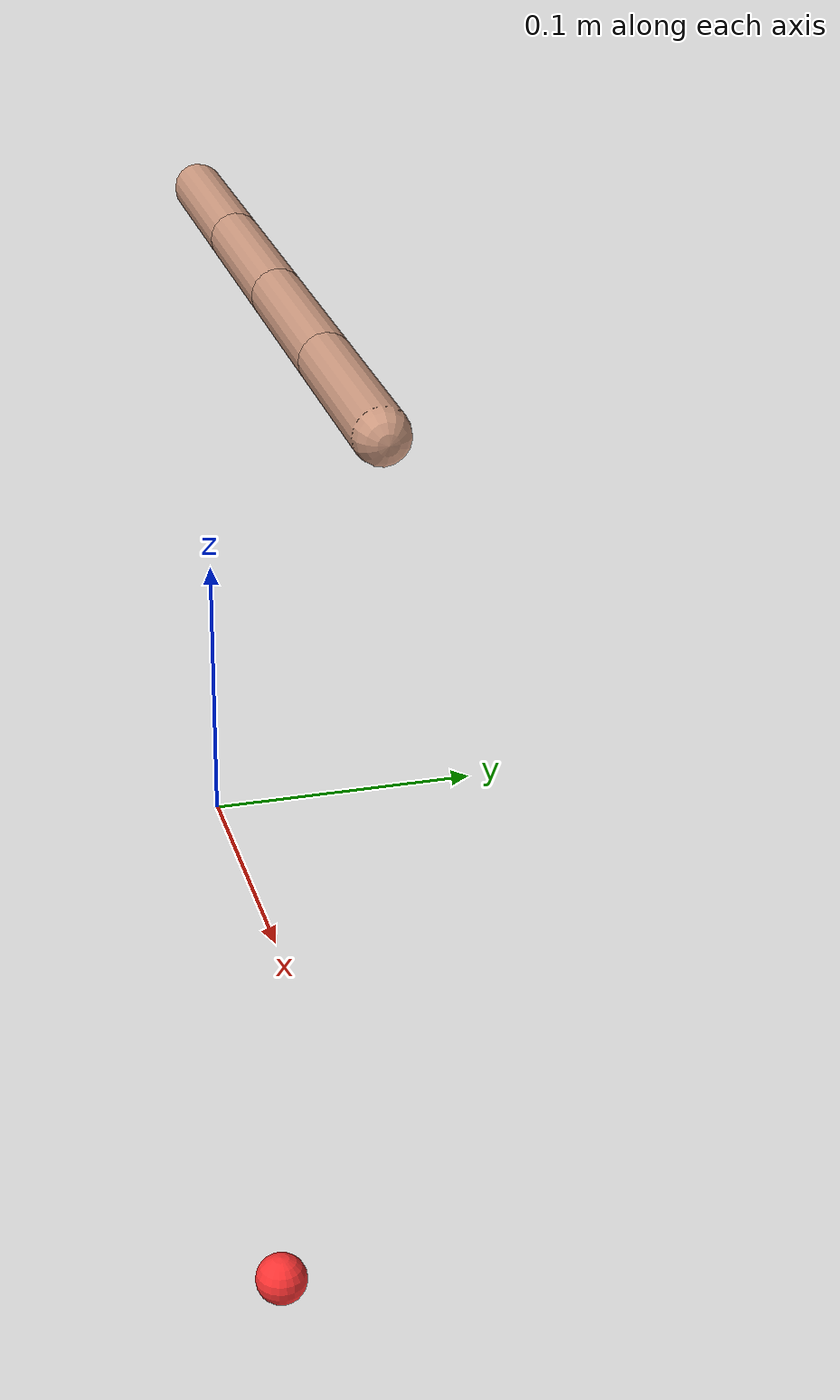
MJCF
<mujoco model="4link_tendon_planar">
    <compiler angle="radian"/>
    <option gravity="0 0 -9.81" integrator="implicitfast" timestep="0.005"/>

    <default>
        <joint type="hinge" axis="0 1 0" limited="true" range="-1.57 1.57" damping="0.01"/>
        <geom type="capsule" size="0.005 0.03" rgba="1 1 1 1" mass="0.01"/>

    </default>

        <!-- ================= BACKGROUND ================= -->
    <asset>
        <!-- solid dark background -->
        <texture type="skybox"
                builtin="gradient"
                rgb1="0 0 0"
                rgb2="0 0 0"
                width="512"
                height="512"/>

        <!-- subtle dark grid floor -->
        <texture type="2d" name="groundplane"
                 builtin="checker"
                 rgb1="0.08 0.08 0.09"
                 rgb2="0.04 0.04 0.045"
                 width="300" height="300"/>

        <material name="groundplane"
                  texture="groundplane"
                  texuniform="true"
                  texrepeat="6 6"
                  reflectance="0"/>
    </asset>

    <worldbody>
        <camera name="ortho_side"
            mode="fixed"
            orthographic="true"
            pos="0.05 -1 0.15"
            xyaxes="1 0 0  0 0 1"
            fovy="0.33"/>
        <body name="link1" pos="0 0 0.24">
            <joint name="joint1" />
            <geom fromto="0 0 0 0.06 0 0" size="0.008" rgba="0.8 0.6 0.5 1"/>
            <body name="link2" pos="0.06 0 0">
                <joint name="joint2"/>
                <geom fromto="0 0 0 0.06 0 0" size="0.008" rgba="0.8 0.6 0.5 1"/>
                <body name="link3" pos="0.06 0 0">
                    <joint name="joint3"/>
                    <geom fromto="0 0 0 0.06 0 0" size="0.008" rgba="0.8 0.6 0.5 1"/>
                    <body name="link4" pos="0.06 0 0">
                        <joint name="joint4"/>
                        <geom fromto="0 0 0 0.06 0 0" size="0.008" rgba="0.8 0.6 0.5 1"/>
                        <body name="attachment" pos="0.06 0.0 0.0">
                              <site name="ee" rgba="1 0 0 1" size="0.001" group="1"/>
                        </body>
                    </body>
                </body>
            </body>
        </body>
    </worldbody>

    <worldbody>
        <body name="target" pos="0.1 0.0 -0.15" quat="0 1 0 0" mocap="true">
        <site type="sphere" size="0.01" rgba="1 0.2 0.2 0.9" group="2"/>
        </body>
    </worldbody>

        <visual>

        <!-- remove haze completely -->
        <rgba haze="0 0 0 0"/>

        <!-- softer light on dark bg -->
        <headlight diffuse="0.9 0.9 0.9"
                ambient="0.15 0.15 0.15"
                specular="0 0 0"/>

        <global azimuth="140"
                elevation="-20"
                offwidth="3840"
                offheight="2160"/>

    </visual>

    <!-- Tendon-based antagonistic actuation -->
    <tendon>
        <!-- Tendon pair A -->
        <fixed name="tendon_a_flex">
            <joint joint="joint1" coef="1"/>
            <joint joint="joint2" coef="1"/>
        </fixed>
        <fixed name="tendon_a_ext">
            <joint joint="joint1" coef="-1"/>
            <joint joint="joint2" coef="-1"/>
        </fixed>

        <!-- Tendon pair B -->
        <fixed name="tendon_b_flex">
            <joint joint="joint3" coef="1"/>
            <joint joint="joint4" coef="1"/>
        </fixed>
        <fixed name="tendon_b_ext">
            <joint joint="joint3" coef="-1"/>
            <joint joint="joint4" coef="-1"/>
        </fixed>
    </tendon>

    <!-- Actuators for tendons -->
    <actuator>
        <motor tendon="tendon_a_flex" ctrlrange="0 1" gear="0.1"/>
        <motor tendon="tendon_a_ext" ctrlrange="0 1" gear="0.1"/>
        <motor tendon="tendon_b_flex" ctrlrange="0 1" gear="0.1"/>
        <motor tendon="tendon_b_ext" ctrlrange="0 1" gear="0.1"/>
    </actuator>
</mujoco>
